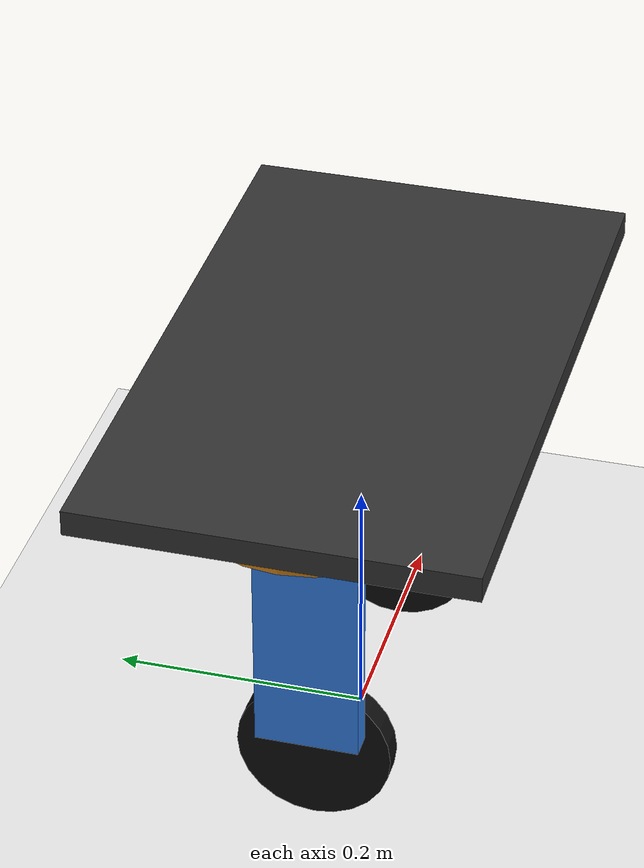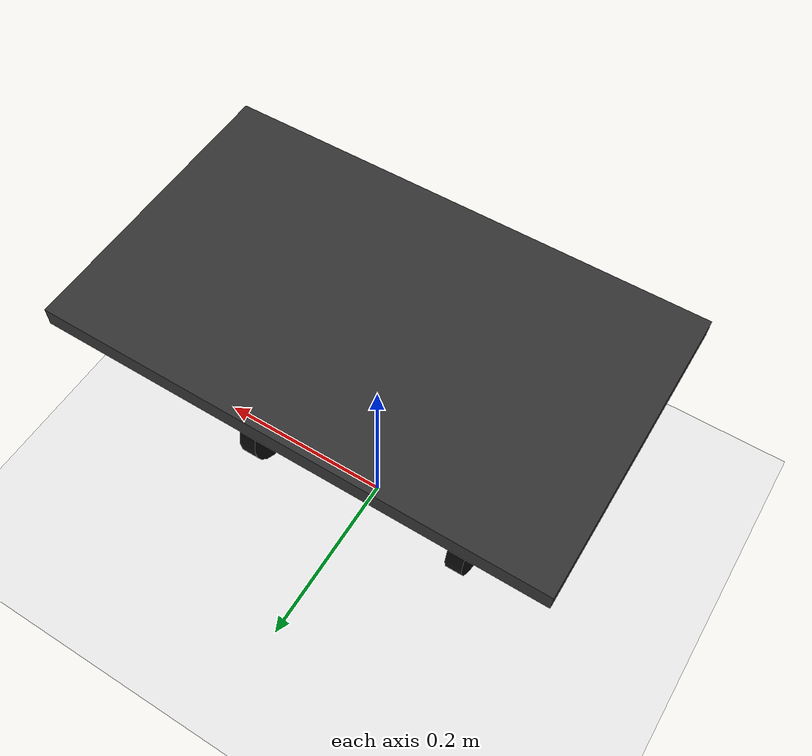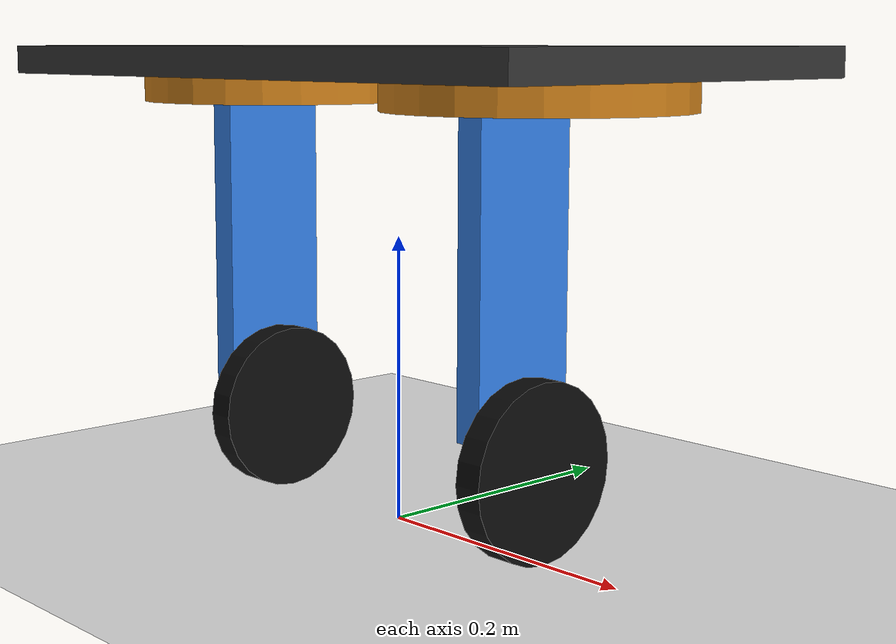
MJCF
<mujoco model="steer_cart">
  <!-- 舵轮小车：锁死倾倒方向（roll/pitch），只保留 x/y/yaw 平面运动 -->
  <compiler angle="radian" coordinate="local" inertiafromgeom="true" />
  <option timestep="0.002" gravity="0 0 -9.81" integrator="RK4" cone="elliptic" />

  <default>
    <joint damping="0.2" armature="0.01" />
    <geom friction="1.0 0.005 0.0001" solref="0.02 1" solimp="0.9 0.95 0.001" />
  </default>

  <asset>
    <texture name="tex_checker" type="2d" builtin="checker" width="512" height="512" rgb1="0.9 0.9 0.9" rgb2="0.6 0.6 0.6" />
    <material name="mat_ground" texture="tex_checker" texrepeat="4 4" texuniform="true" />
    <material name="mat_chassis" rgba="0.2 0.2 0.2 1" />
    <material name="mat_leg" rgba="0.2 0.5 0.9 1" />
    <material name="mat_wheel" rgba="0.05 0.05 0.05 1" />
    <material name="mat_servo" rgba="0.8 0.5 0.1 1" />
  </asset>

  <worldbody>
    <!-- 地面与相机 -->
    <geom name="ground" type="plane" size="10 10 0.1" rgba="0.92 0.92 0.92 1" friction="1.2 0.005 0.0001" material="mat_ground" />
    <light name="sun" pos="0 0 2" dir="0 0 -1" diffuse="0.8 0.8 0.8" specular="0.2 0.2 0.2" />
    <camera name="track" mode="trackcom" pos="0 -1.2 0.6" xyaxes="1 0 0 0 0 1" />

    <!-- 坐标系：x 向前，y 向左，z 向上 -->
    <body name="chassis" pos="0 0 0.32">
      <!-- 平面底座：只允许 x、y 平移与 yaw -->
      <joint name="base_z" type="slide" axis="0 0 1" damping="1" />
      <joint name="base_x" type="slide" axis="1 0 0" damping="2" />
      <joint name="base_y" type="slide" axis="0 1 0" damping="2" />
      <joint name="base_yaw" type="hinge" axis="0 0 1" damping="1" />
      <joint name="base_pitch" type="hinge" axis="0 1 0" damping="1" />
      <!-- 车身主体 -->
      <geom
        name="chassis_geom"
        type="box"
        size="0.25 0.15 0.01"
        mass="6.87"
        material="mat_chassis" />

      <!-- 参考点：控制器位置 -->
      <site name="ctrl_site" pos="0.15 0 0" size="0.01" rgba="0 1 0 1" />

      <!-- 前轮舵轮模块 -->
      <body name="left_module" pos="0.13 0 -0.02" euler="0 0 1.5708">
        <!-- 舵角关节 -->
        <joint name="left_steer" type="hinge" axis="0 0 1" damping="0.2" />
        <geom name="left_servo_geom" type="cylinder" size="0.1 0.01" mass="0.304" material="mat_servo" />
        <geom name="left_leg_geom" type="box" pos="0 0.02 -0.10" size="0.04 0.01 0.12" mass="5" material="mat_leg" />
        <body name="left_wheel" pos="0 0 -0.24">
          <joint name="left_wheel_spin" type="hinge" axis="0 1 0" damping="0.05" />
          <geom name="left_wheel_geom" type="cylinder" size="0.06 0.01" quat="0.7071068 0.7071068 0 0" mass="0.828" material="mat_wheel" />
        </body>
      </body>

      <!-- 后轮舵轮模块 -->
      <body name="right_module" pos="-0.13 0 -0.02" euler="0 0 1.5708">
        <!-- 舵角关节 -->
        <joint name="right_steer" type="hinge" axis="0 0 1" damping="0.2" />
        <geom name="right_servo_geom" type="cylinder" size="0.1 0.01" mass="0.304" material="mat_servo" />
        <geom name="right_leg_geom" type="box" pos="0 0.02 -0.10" size="0.04 0.01 0.12" mass="5" material="mat_leg" />
        <body name="right_wheel" pos="0 0 -0.24">
          <joint name="right_wheel_spin" type="hinge" axis="0 1 0" damping="0.05" />
          <geom name="right_wheel_geom" type="cylinder" size="0.06 0.01" quat="0.7071068 0.7071068 0 0" mass="0.828" material="mat_wheel" />
        </body>
      </body>
    </body>
  </worldbody>

  <actuator>
    <!-- 舵角力矩控制（PID 在脚本中实现） -->
    <motor name="left_steer_tau" joint="left_steer" gear="1" ctrlrange="-50 50" />
    <motor name="right_steer_tau" joint="right_steer" gear="1" ctrlrange="-50 50" />
    <!-- 轮子力矩控制（PID 在脚本中实现） -->
    <motor name="left_wheel_tau" joint="left_wheel_spin" gear="1" ctrlrange="-8 8" />
    <motor name="right_wheel_tau" joint="right_wheel_spin" gear="1" ctrlrange="-8 8" />
  </actuator>
</mujoco>
